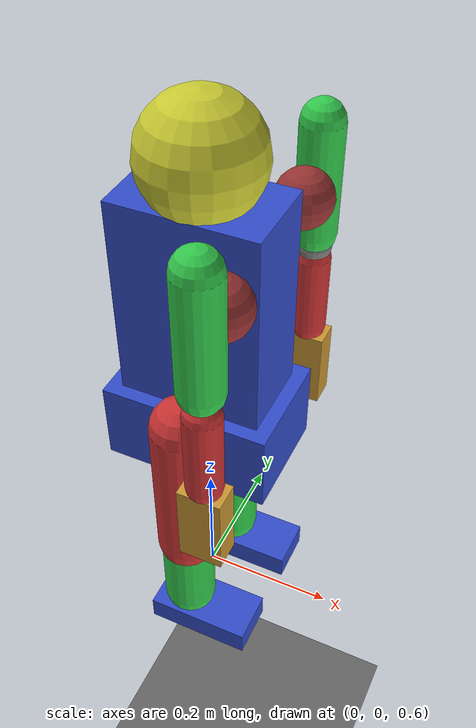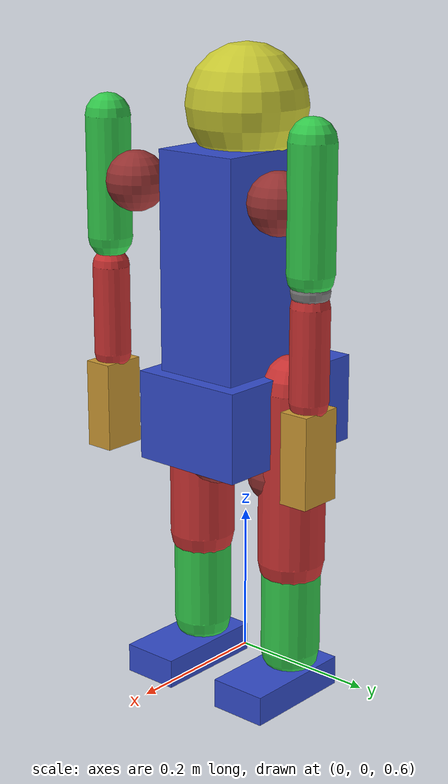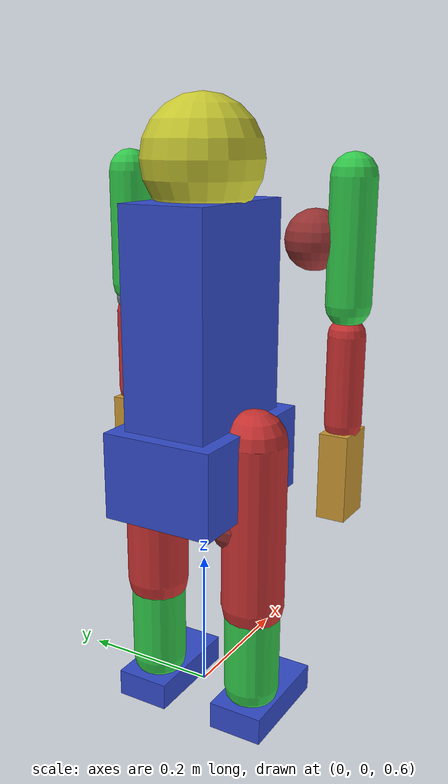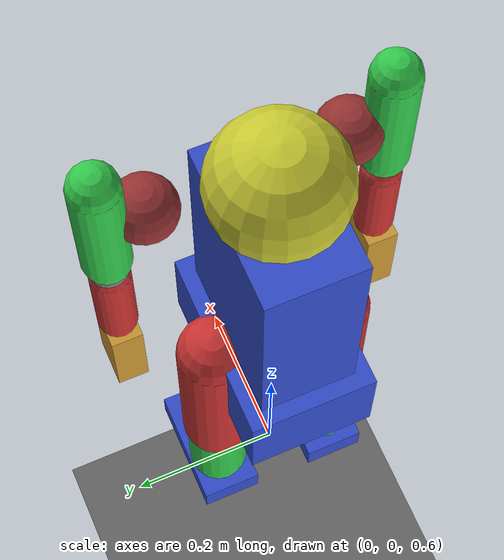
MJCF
<?xml version="1.0" ?>
<mujoco model="unitree_g1_29dof">
    <compiler angle="degree" autolimits="true"/>
    <option timestep="0.001" iterations="50" solver="Newton" tolerance="1e-10"/>

    <size nconmax="200" njmax="2000" nstack="1000000"/>

    <default>
        <motor ctrlrange="-1 1" ctrllimited="true"/>
        <geom contype="1" conaffinity="1" condim="3" friction="1.2 0.5 0.005" margin="0.01"/>
        <joint armature="0.01" damping="0.2" limited="true"/>

        <default class="body">
            <geom type="mesh" contype="0" conaffinity="0" group="1" density="1000" mass="0.1"/>
        </default>

        <default class="leg">
            <joint damping="0.5" armature="0.1"/>
        </default>

        <default class="arm">
            <joint damping="0.3" armature="0.05"/>
        </default>

        <default class="hand">
            <joint damping="0.1" armature="0.01"/>
        </default>
    </default>

    <worldbody>
        <light name="spotlight" mode="targetbodycom" target="pelvis" pos="0 -3 2"/>
        <geom name="floor" size="15 15 0.125" type="plane" rgba="0.4 0.4 0.4 1"/>

        <!-- Main body with free joint for 6 DOF base motion -->
        <body name="pelvis" pos="0 0 0.95">
            <camera name="track" mode="trackcom" pos="0 -4 2" xyaxes="1 0 0 0 1 2"/>
            <joint name="root" type="free"/>

            <!-- Pelvis (base) -->
            <geom name="pelvis" type="box" size="0.12 0.08 0.06" rgba="0.2 0.3 0.8 1"/>

            <!-- Torso -->
            <body name="torso" pos="0 0 0.15">
                <joint name="torso_pitch" type="hinge" axis="1 0 0" range="-45 45"/>
                <geom name="torso" type="box" size="0.1 0.06 0.2" rgba="0.2 0.3 0.8 1"/>

                <!-- Head -->
                <body name="head" pos="0 0 0.25">
                    <joint name="head_yaw" type="hinge" axis="0 0 1" range="-90 90"/>
                    <joint name="head_pitch" type="hinge" axis="1 0 0" range="-30 30"/>
                    <geom name="head" type="sphere" size="0.08" rgba="0.8 0.8 0.2 1"/>
                </body>

                <!-- LEFT ARM CHAIN (7 DOF) -->
                <body name="left_shoulder" pos="0.08 0.12 0.15">
                    <joint name="left_shoulder_pitch" type="hinge" axis="1 0 0" range="-180 60" class="arm"/>
                    <geom name="left_shoulder" type="sphere" size="0.04" rgba="0.6 0.2 0.2 1"/>

                    <body name="left_shoulder_roll" pos="0 0.05 0">
                        <joint name="left_shoulder_roll" type="hinge" axis="0 1 0" range="-120 120" class="arm"/>
                        <geom name="left_upper_arm" type="capsule" size="0.03 0.08" rgba="0.2 0.8 0.3 1"/>

                        <body name="left_shoulder_yaw" pos="0 0 -0.1">
                            <joint name="left_shoulder_yaw" type="hinge" axis="0 0 1" range="-90 90" class="arm"/>
                            <geom name="left_shoulder_yaw_link" type="sphere" size="0.025" rgba="0.5 0.5 0.5 1" mass="0.2"/>

                            <body name="left_elbow" pos="0 0 -0.08">
                                <joint name="left_elbow_pitch" type="hinge" axis="1 0 0" range="-150 10" class="arm"/>
                                <geom name="left_forearm" type="capsule" size="0.025 0.06" rgba="0.8 0.2 0.2 1"/>

                                <body name="left_wrist" pos="0 0 -0.08">
                                    <joint name="left_wrist_pitch" type="hinge" axis="1 0 0" range="-60 60" class="hand"/>
                                    <joint name="left_wrist_yaw" type="hinge" axis="0 0 1" range="-45 45" class="hand"/>

                                    <body name="left_hand" pos="0 0 -0.05">
                                        <joint name="left_hand_pitch" type="hinge" axis="1 0 0" range="-30 30" class="hand"/>
                                        <geom name="left_hand" type="box" size="0.03 0.02 0.06" rgba="0.8 0.6 0.2 1"/>
                                    </body>
                                </body>
                            </body>
                        </body>
                    </body>
                </body>

                <!-- RIGHT ARM CHAIN (7 DOF) -->
                <body name="right_shoulder" pos="0.08 -0.12 0.15">
                    <joint name="right_shoulder_pitch" type="hinge" axis="1 0 0" range="-180 60" class="arm"/>
                    <geom name="right_shoulder" type="sphere" size="0.04" rgba="0.6 0.2 0.2 1"/>

                    <body name="right_shoulder_roll" pos="0 -0.05 0">
                        <joint name="right_shoulder_roll" type="hinge" axis="0 -1 0" range="-120 120" class="arm"/>
                        <geom name="right_upper_arm" type="capsule" size="0.03 0.08" rgba="0.2 0.8 0.3 1"/>

                        <body name="right_shoulder_yaw" pos="0 0 -0.1">
                            <joint name="right_shoulder_yaw" type="hinge" axis="0 0 1" range="-90 90" class="arm"/>

                            <body name="right_elbow" pos="0 0 -0.08">
                                <joint name="right_elbow_pitch" type="hinge" axis="1 0 0" range="-150 10" class="arm"/>
                                <geom name="right_forearm" type="capsule" size="0.025 0.06" rgba="0.8 0.2 0.2 1"/>

                                <body name="right_wrist" pos="0 0 -0.08">
                                    <joint name="right_wrist_pitch" type="hinge" axis="1 0 0" range="-60 60" class="hand"/>
                                    <joint name="right_wrist_yaw" type="hinge" axis="0 0 1" range="-45 45" class="hand"/>

                                    <body name="right_hand" pos="0 0 -0.05">
                                        <joint name="right_hand_pitch" type="hinge" axis="1 0 0" range="-30 30" class="hand"/>
                                        <geom name="right_hand" type="box" size="0.03 0.02 0.06" rgba="0.8 0.6 0.2 1"/>
                                    </body>
                                </body>
                            </body>
                        </body>
                    </body>
                </body>
            </body>

            <!-- LEFT LEG CHAIN (6 DOF) -->
            <body name="left_hip" pos="0 0.06 -0.08">
                <joint name="left_hip_pitch" type="hinge" axis="1 0 0" range="-60 120" class="leg"/>
                <geom name="left_hip" type="sphere" size="0.045" rgba="0.6 0.2 0.2 1"/>

                <body name="left_hip_roll" pos="0 0.02 0">
                    <joint name="left_hip_roll" type="hinge" axis="0 1 0" range="-30 30" class="leg"/>

                    <body name="left_hip_yaw" pos="0 0 0">
                        <joint name="left_hip_yaw" type="hinge" axis="0 0 1" range="-45 45" class="leg"/>
                        <geom name="left_thigh" type="capsule" size="0.045 0.12" rgba="0.8 0.2 0.2 1"/>

                        <body name="left_knee" pos="0 0 -0.15">
                            <joint name="left_knee_pitch" type="hinge" axis="1 0 0" range="-150 0" class="leg"/>
                            <geom name="left_shin" type="capsule" size="0.04 0.1" rgba="0.2 0.8 0.3 1"/>

                            <body name="left_ankle" pos="0 0 -0.12">
                                <joint name="left_ankle_pitch" type="hinge" axis="1 0 0" range="-45 45" class="leg"/>
                                <joint name="left_ankle_roll" type="hinge" axis="0 1 0" range="-25 25" class="leg"/>
                                <geom name="left_foot" type="box" size="0.08 0.04 0.02" pos="0.03 0 -0.02" rgba="0.2 0.3 0.8 1"/>
                            </body>
                        </body>
                    </body>
                </body>
            </body>

            <!-- RIGHT LEG CHAIN (6 DOF) -->
            <body name="right_hip" pos="0 -0.06 -0.08">
                <joint name="right_hip_pitch" type="hinge" axis="1 0 0" range="-60 120" class="leg"/>
                <geom name="right_hip" type="sphere" size="0.045" rgba="0.6 0.2 0.2 1"/>

                <body name="right_hip_roll" pos="0 -0.02 0">
                    <joint name="right_hip_roll" type="hinge" axis="0 -1 0" range="-30 30" class="leg"/>

                    <body name="right_hip_yaw" pos="0 0 0">
                        <joint name="right_hip_yaw" type="hinge" axis="0 0 1" range="-45 45" class="leg"/>
                        <geom name="right_thigh" type="capsule" size="0.045 0.12" rgba="0.8 0.2 0.2 1"/>

                        <body name="right_knee" pos="0 0 -0.15">
                            <joint name="right_knee_pitch" type="hinge" axis="1 0 0" range="-150 0" class="leg"/>
                            <geom name="right_shin" type="capsule" size="0.04 0.1" rgba="0.2 0.8 0.3 1"/>

                            <body name="right_ankle" pos="0 0 -0.12">
                                <joint name="right_ankle_pitch" type="hinge" axis="1 0 0" range="-45 45" class="leg"/>
                                <joint name="right_ankle_roll" type="hinge" axis="0 -1 0" range="-25 25" class="leg"/>
                                <geom name="right_foot" type="box" size="0.08 0.04 0.02" pos="0.03 0 -0.02" rgba="0.2 0.3 0.8 1"/>
                            </body>
                        </body>
                    </body>
                </body>
            </body>
        </body>
    </worldbody>

    <actuator>
        <!-- Torso (1 DOF) -->
        <motor name="torso_pitch_motor" joint="torso_pitch" gear="100"/>

        <!-- Head (2 DOF) -->
        <motor name="head_yaw_motor" joint="head_yaw" gear="30"/>
        <motor name="head_pitch_motor" joint="head_pitch" gear="30"/>

        <!-- Left Arm (7 DOF) -->
        <motor name="left_shoulder_pitch_motor" joint="left_shoulder_pitch" gear="100"/>
        <motor name="left_shoulder_roll_motor" joint="left_shoulder_roll" gear="100"/>
        <motor name="left_shoulder_yaw_motor" joint="left_shoulder_yaw" gear="80"/>
        <motor name="left_elbow_pitch_motor" joint="left_elbow_pitch" gear="60"/>
        <motor name="left_wrist_pitch_motor" joint="left_wrist_pitch" gear="30"/>
        <motor name="left_wrist_yaw_motor" joint="left_wrist_yaw" gear="25"/>
        <motor name="left_hand_pitch_motor" joint="left_hand_pitch" gear="20"/>

        <!-- Right Arm (7 DOF) -->
        <motor name="right_shoulder_pitch_motor" joint="right_shoulder_pitch" gear="100"/>
        <motor name="right_shoulder_roll_motor" joint="right_shoulder_roll" gear="100"/>
        <motor name="right_shoulder_yaw_motor" joint="right_shoulder_yaw" gear="80"/>
        <motor name="right_elbow_pitch_motor" joint="right_elbow_pitch" gear="60"/>
        <motor name="right_wrist_pitch_motor" joint="right_wrist_pitch" gear="30"/>
        <motor name="right_wrist_yaw_motor" joint="right_wrist_yaw" gear="25"/>
        <motor name="right_hand_pitch_motor" joint="right_hand_pitch" gear="20"/>

        <!-- Left Leg (6 DOF) -->
        <motor name="left_hip_pitch_motor" joint="left_hip_pitch" gear="200"/>
        <motor name="left_hip_roll_motor" joint="left_hip_roll" gear="200"/>
        <motor name="left_hip_yaw_motor" joint="left_hip_yaw" gear="150"/>
        <motor name="left_knee_pitch_motor" joint="left_knee_pitch" gear="200"/>
        <motor name="left_ankle_pitch_motor" joint="left_ankle_pitch" gear="100"/>
        <motor name="left_ankle_roll_motor" joint="left_ankle_roll" gear="100"/>

        <!-- Right Leg (6 DOF) -->
        <motor name="right_hip_pitch_motor" joint="right_hip_pitch" gear="200"/>
        <motor name="right_hip_roll_motor" joint="right_hip_roll" gear="200"/>
        <motor name="right_hip_yaw_motor" joint="right_hip_yaw" gear="150"/>
        <motor name="right_knee_pitch_motor" joint="right_knee_pitch" gear="200"/>
        <motor name="right_ankle_pitch_motor" joint="right_ankle_pitch" gear="100"/>
        <motor name="right_ankle_roll_motor" joint="right_ankle_roll" gear="100"/>
    </actuator>
</mujoco>
